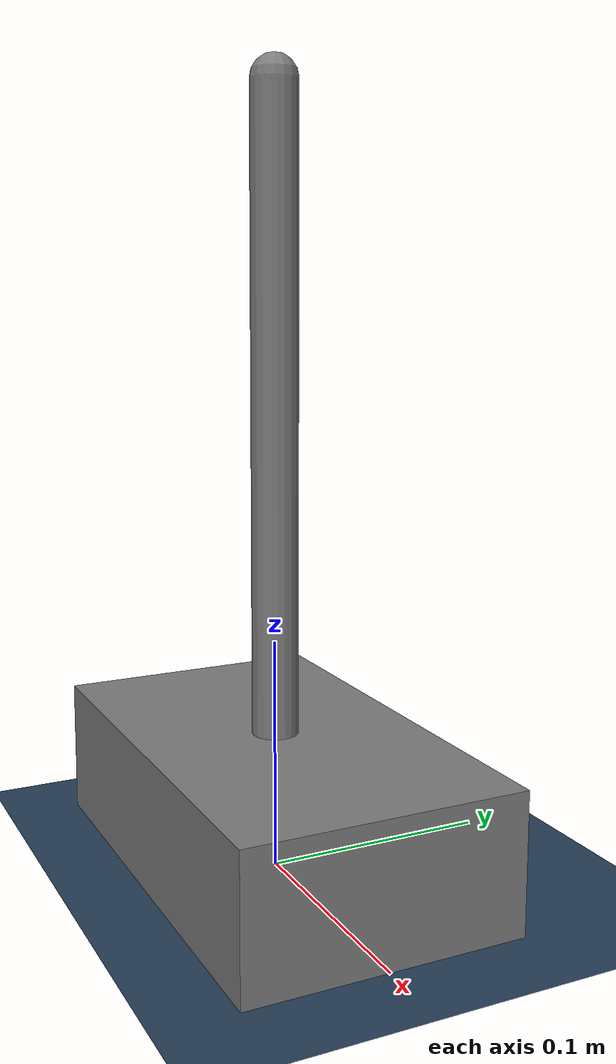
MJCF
<mujoco model="cartpole">
  <compiler angle="radian"/>
  <option timestep="0.001" gravity="0 0 -9.81" integrator="RK4"/>

  <asset>
    <texture type="2d" name="groundplane" builtin="checker" mark="edge" rgb1="0.2 0.3 0.4" rgb2="0.1 0.2 0.3" markrgb="0.8 0.8 0.8" width="300" height="300"/>
    <material name="groundplane" texture="groundplane" texuniform="true" texrepeat="5 5" reflectance="0.2"/>
  </asset>

  <worldbody>
    <light pos="0 0 1.5" dir="0 0 -1" directional="true"/>
    <geom name="floor"
          size="0 0 0.05"
          type="plane"
          material="groundplane"
    />

    <body name="cart" pos="0 0 0.03">
      <joint name="slide" type="slide" axis="1 0 0"/>
      <geom type="box" size="0.10 0.06 0.03" mass="1"/>
      <body name="pole" pos="0 0 0" euler="0 3.1415926 0">
        <joint name="hinge" type="hinge" axis="0 1 0"/>
        <geom type="capsule" fromto="0 0 0  0 0 -0.3"
              size="0.01" density="1e-6"
              contype="2" conaffinity="2"/>
        <body name="bob" pos="0 0 -0.3">
          <geom type="sphere" size="0.0002" mass="0.2"
                rgba="0.2 0.2 0.8 1"
                contype="2" conaffinity="2"/>
        </body>
      </body>
    </body>
  </worldbody>

  <actuator>
    <motor name="u" joint="slide" gear="1.0"/>
  </actuator>

  <keyframe>
    <key name="start"
         qpos="0 -0.523598776"
         qvel="0 0"/>
  </keyframe>
</mujoco>
